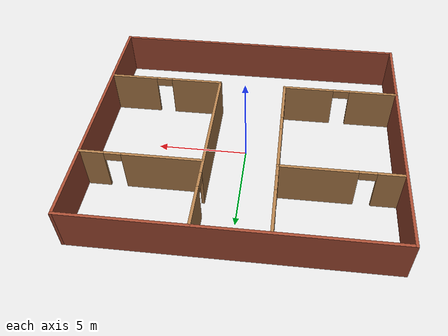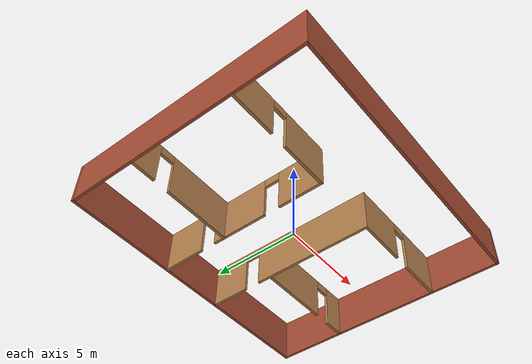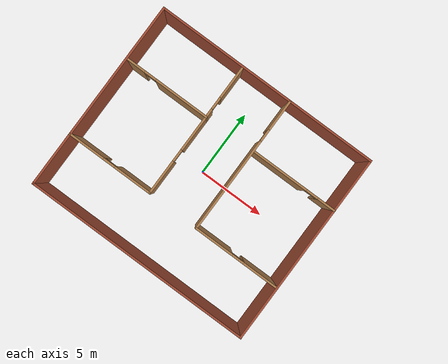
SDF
<?xml version='1.0'?>
<sdf version='1.7'>
  <model name='floor_test'>
    <pose>-0.017473 -0.050716 0 0 -0 0</pose>
    <link name='Wall_0'>
      <collision name='Wall_0_Collision'>
        <geometry>
          <box>
            <size>14.25 0.15 2.5</size>
          </box>
        </geometry>
        <pose>0 0 1.25 0 -0 0</pose>
      </collision>
      <visual name='Wall_0_Visual'>
        <pose>0 0 1.25 0 -0 0</pose>
        <geometry>
          <box>
            <size>14.25 0.15 2.5</size>
          </box>
        </geometry>
        <material>
          <script>
            <uri>file://media/materials/scripts/gazebo.material</uri>
            <name>Gazebo/Bricks</name>
          </script>
          <ambient>1 1 1 1</ambient>
        </material>
        <meta>
          <layer>0</layer>
        </meta>
      </visual>
      <pose>-8.3 -0 0 0 -0 -1.5708</pose>
    </link>
    <link name='Wall_12'>
      <pose>-1.91837 1.96895 0 0 -0 1.5708</pose>
      <visual name='Wall_12_Visual_0'>
        <pose>-3.81265 0 1.25 0 -0 0</pose>
        <geometry>
          <box>
            <size>2.6247 0.15 2.5</size>
          </box>
        </geometry>
        <material>
          <script>
            <uri>file://media/materials/scripts/gazebo.material</uri>
            <name>Gazebo/Wood</name>
          </script>
          <ambient>1 1 1 1</ambient>
        </material>
        <meta>
          <layer>0</layer>
        </meta>
      </visual>
      <collision name='Wall_12_Collision_0'>
        <geometry>
          <box>
            <size>2.6247 0.15 2.5</size>
          </box>
        </geometry>
        <pose>-3.81265 0 1.25 0 -0 0</pose>
      </collision>
      <visual name='Wall_12_Visual_1'>
        <pose>0.045891 0 1.25 0 -0 0</pose>
        <geometry>
          <box>
            <size>3.29239 0.15 2.5</size>
          </box>
        </geometry>
        <material>
          <script>
            <uri>file://media/materials/scripts/gazebo.material</uri>
            <name>Gazebo/Wood</name>
          </script>
          <ambient>1 1 1 1</ambient>
        </material>
        <meta>
          <layer>0</layer>
        </meta>
      </visual>
      <collision name='Wall_12_Collision_1'>
        <geometry>
          <box>
            <size>3.29239 0.15 2.5</size>
          </box>
        </geometry>
        <pose>0.045891 0 1.25 0 -0 0</pose>
      </collision>
      <visual name='Wall_12_Visual_2'>
        <pose>3.85854 0 1.25 0 -0 0</pose>
        <geometry>
          <box>
            <size>2.53291 0.15 2.5</size>
          </box>
        </geometry>
        <material>
          <script>
            <uri>file://media/materials/scripts/gazebo.material</uri>
            <name>Gazebo/Wood</name>
          </script>
          <ambient>1 1 1 1</ambient>
        </material>
        <meta>
          <layer>0</layer>
        </meta>
      </visual>
      <collision name='Wall_12_Collision_2'>
        <geometry>
          <box>
            <size>2.53291 0.15 2.5</size>
          </box>
        </geometry>
        <pose>3.85854 0 1.25 0 -0 0</pose>
      </collision>
      <visual name='Wall_12_Visual_3'>
        <pose>-2.0503 0 2.25 0 -0 0</pose>
        <geometry>
          <box>
            <size>0.9 0.15 0.5</size>
          </box>
        </geometry>
        <material>
          <script>
            <uri>file://media/materials/scripts/gazebo.material</uri>
            <name>Gazebo/Wood</name>
          </script>
          <ambient>1 1 1 1</ambient>
        </material>
        <meta>
          <layer>0</layer>
        </meta>
      </visual>
      <collision name='Wall_12_Collision_3'>
        <geometry>
          <box>
            <size>0.9 0.15 0.5</size>
          </box>
        </geometry>
        <pose>-2.0503 0 2.25 0 -0 0</pose>
      </collision>
      <visual name='Wall_12_Visual_4'>
        <pose>2.14209 0 2.25 0 -0 0</pose>
        <geometry>
          <box>
            <size>0.9 0.15 0.5</size>
          </box>
        </geometry>
        <material>
          <script>
            <uri>file://media/materials/scripts/gazebo.material</uri>
            <name>Gazebo/Wood</name>
          </script>
          <ambient>1 1 1 1</ambient>
        </material>
        <meta>
          <layer>0</layer>
        </meta>
      </visual>
      <collision name='Wall_12_Collision_4'>
        <geometry>
          <box>
            <size>0.9 0.15 0.5</size>
          </box>
        </geometry>
        <pose>2.14209 0 2.25 0 -0 0</pose>
      </collision>
    </link>
    <link name='Wall_19'>
      <pose>1.84747 1.93399 0 0 -0 -1.5708</pose>
      <visual name='Wall_19_Visual_0'>
        <pose>-3.98156 0 1.25 0 -0 0</pose>
        <geometry>
          <box>
            <size>2.28688 0.15 2.5</size>
          </box>
        </geometry>
        <material>
          <script>
            <uri>file://media/materials/scripts/gazebo.material</uri>
            <name>Gazebo/Wood</name>
          </script>
          <ambient>1 1 1 1</ambient>
        </material>
        <meta>
          <layer>0</layer>
        </meta>
      </visual>
      <collision name='Wall_19_Collision_0'>
        <geometry>
          <box>
            <size>2.28688 0.15 2.5</size>
          </box>
        </geometry>
        <pose>-3.98156 0 1.25 0 -0 0</pose>
      </collision>
      <visual name='Wall_19_Visual_1'>
        <pose>1.59344 0 1.25 0 -0 0</pose>
        <geometry>
          <box>
            <size>7.06312 0.15 2.5</size>
          </box>
        </geometry>
        <material>
          <script>
            <uri>file://media/materials/scripts/gazebo.material</uri>
            <name>Gazebo/Wood</name>
          </script>
          <ambient>1 1 1 1</ambient>
        </material>
        <meta>
          <layer>0</layer>
        </meta>
      </visual>
      <collision name='Wall_19_Collision_1'>
        <geometry>
          <box>
            <size>7.06312 0.15 2.5</size>
          </box>
        </geometry>
        <pose>1.59344 0 1.25 0 -0 0</pose>
      </collision>
      <visual name='Wall_19_Visual_2'>
        <pose>-2.38812 0 2.25 0 -0 0</pose>
        <geometry>
          <box>
            <size>0.9 0.15 0.5</size>
          </box>
        </geometry>
        <material>
          <script>
            <uri>file://media/materials/scripts/gazebo.material</uri>
            <name>Gazebo/Wood</name>
          </script>
          <ambient>1 1 1 1</ambient>
        </material>
        <meta>
          <layer>0</layer>
        </meta>
      </visual>
      <collision name='Wall_19_Collision_2'>
        <geometry>
          <box>
            <size>0.9 0.15 0.5</size>
          </box>
        </geometry>
        <pose>-2.38812 0 2.25 0 -0 0</pose>
      </collision>
    </link>
    <link name='Wall_2'>
      <collision name='Wall_2_Collision'>
        <geometry>
          <box>
            <size>16.75 0.15 2.5</size>
          </box>
        </geometry>
        <pose>0 0 1.25 0 -0 0</pose>
      </collision>
      <visual name='Wall_2_Visual'>
        <pose>0 0 1.25 0 -0 0</pose>
        <geometry>
          <box>
            <size>16.75 0.15 2.5</size>
          </box>
        </geometry>
        <material>
          <script>
            <uri>file://media/materials/scripts/gazebo.material</uri>
            <name>Gazebo/Bricks</name>
          </script>
          <ambient>1 1 1 1</ambient>
        </material>
        <meta>
          <layer>0</layer>
        </meta>
      </visual>
      <pose>-0 -7.05 0 0 -0 0</pose>
    </link>
    <link name='Wall_20'>
      <pose>5.02247 -3.11601 0 0 -0 0</pose>
      <visual name='Wall_20_Visual_0'>
        <pose>-1.77687 0 1.25 0 -0 0</pose>
        <geometry>
          <box>
            <size>2.94625 0.15 2.5</size>
          </box>
        </geometry>
        <material>
          <script>
            <uri>file://media/materials/scripts/gazebo.material</uri>
            <name>Gazebo/Wood</name>
          </script>
          <ambient>1 1 1 1</ambient>
        </material>
        <meta>
          <layer>0</layer>
        </meta>
      </visual>
      <collision name='Wall_20_Collision_0'>
        <geometry>
          <box>
            <size>2.94625 0.15 2.5</size>
          </box>
        </geometry>
        <pose>-1.77687 0 1.25 0 -0 0</pose>
      </collision>
      <visual name='Wall_20_Visual_1'>
        <pose>1.92313 0 1.25 0 -0 0</pose>
        <geometry>
          <box>
            <size>2.65375 0.15 2.5</size>
          </box>
        </geometry>
        <material>
          <script>
            <uri>file://media/materials/scripts/gazebo.material</uri>
            <name>Gazebo/Wood</name>
          </script>
          <ambient>1 1 1 1</ambient>
        </material>
        <meta>
          <layer>0</layer>
        </meta>
      </visual>
      <collision name='Wall_20_Collision_1'>
        <geometry>
          <box>
            <size>2.65375 0.15 2.5</size>
          </box>
        </geometry>
        <pose>1.92313 0 1.25 0 -0 0</pose>
      </collision>
      <visual name='Wall_20_Visual_2'>
        <pose>0.146254 0 2.25 0 -0 0</pose>
        <geometry>
          <box>
            <size>0.9 0.15 0.5</size>
          </box>
        </geometry>
        <material>
          <script>
            <uri>file://media/materials/scripts/gazebo.material</uri>
            <name>Gazebo/Wood</name>
          </script>
          <ambient>1 1 1 1</ambient>
        </material>
        <meta>
          <layer>0</layer>
        </meta>
      </visual>
      <collision name='Wall_20_Collision_2'>
        <geometry>
          <box>
            <size>0.9 0.15 0.5</size>
          </box>
        </geometry>
        <pose>0.146254 0 2.25 0 -0 0</pose>
      </collision>
    </link>
    <link name='Wall_22'>
      <pose>5.10227 3.07376 0 0 -0 0</pose>
      <visual name='Wall_22_Visual_0'>
        <pose>-1.13079 0 1.25 0 -0 0</pose>
        <geometry>
          <box>
            <size>4.23843 0.15 2.5</size>
          </box>
        </geometry>
        <material>
          <script>
            <uri>file://media/materials/scripts/gazebo.material</uri>
            <name>Gazebo/Wood</name>
          </script>
          <ambient>1 1 1 1</ambient>
        </material>
        <meta>
          <layer>0</layer>
        </meta>
      </visual>
      <collision name='Wall_22_Collision_0'>
        <geometry>
          <box>
            <size>4.23843 0.15 2.5</size>
          </box>
        </geometry>
        <pose>-1.13079 0 1.25 0 -0 0</pose>
      </collision>
      <visual name='Wall_22_Visual_1'>
        <pose>2.56921 0 1.25 0 -0 0</pose>
        <geometry>
          <box>
            <size>1.36157 0.15 2.5</size>
          </box>
        </geometry>
        <material>
          <script>
            <uri>file://media/materials/scripts/gazebo.material</uri>
            <name>Gazebo/Wood</name>
          </script>
          <ambient>1 1 1 1</ambient>
        </material>
        <meta>
          <layer>0</layer>
        </meta>
      </visual>
      <collision name='Wall_22_Collision_1'>
        <geometry>
          <box>
            <size>1.36157 0.15 2.5</size>
          </box>
        </geometry>
        <pose>2.56921 0 1.25 0 -0 0</pose>
      </collision>
      <visual name='Wall_22_Visual_2'>
        <pose>1.43843 0 2.25 0 -0 0</pose>
        <geometry>
          <box>
            <size>0.9 0.15 0.5</size>
          </box>
        </geometry>
        <material>
          <script>
            <uri>file://media/materials/scripts/gazebo.material</uri>
            <name>Gazebo/Wood</name>
          </script>
          <ambient>1 1 1 1</ambient>
        </material>
        <meta>
          <layer>0</layer>
        </meta>
      </visual>
      <collision name='Wall_22_Collision_2'>
        <geometry>
          <box>
            <size>0.9 0.15 0.5</size>
          </box>
        </geometry>
        <pose>1.43843 0 2.25 0 -0 0</pose>
      </collision>
    </link>
    <link name='Wall_3'>
      <collision name='Wall_3_Collision'>
        <geometry>
          <box>
            <size>14.25 0.15 2.5</size>
          </box>
        </geometry>
        <pose>0 0 1.25 0 -0 0</pose>
      </collision>
      <visual name='Wall_3_Visual'>
        <pose>0 0 1.25 0 -0 0</pose>
        <geometry>
          <box>
            <size>14.25 0.15 2.5</size>
          </box>
        </geometry>
        <material>
          <script>
            <uri>file://media/materials/scripts/gazebo.material</uri>
            <name>Gazebo/Bricks</name>
          </script>
          <ambient>1 1 1 1</ambient>
        </material>
        <meta>
          <layer>0</layer>
        </meta>
      </visual>
      <pose>8.3 -0 0 0 -0 1.5708</pose>
    </link>
    <link name='Wall_4'>
      <collision name='Wall_4_Collision'>
        <geometry>
          <box>
            <size>16.75 0.15 2.5</size>
          </box>
        </geometry>
        <pose>0 0 1.25 0 -0 0</pose>
      </collision>
      <visual name='Wall_4_Visual'>
        <pose>0 0 1.25 0 -0 0</pose>
        <geometry>
          <box>
            <size>16.75 0.15 2.5</size>
          </box>
        </geometry>
        <material>
          <script>
            <uri>file://media/materials/scripts/gazebo.material</uri>
            <name>Gazebo/Bricks</name>
          </script>
          <ambient>1 1 1 1</ambient>
        </material>
        <meta>
          <layer>0</layer>
        </meta>
      </visual>
      <pose>-0 7.05 0 0 -0 3.14159</pose>
    </link>
    <link name='Wall_6'>
      <pose>-5.09337 3.01895 0 0 -0 0</pose>
      <visual name='Wall_6_Visual_0'>
        <pose>-2.50031 0 1.25 0 -0 0</pose>
        <geometry>
          <box>
            <size>1.49937 0.15 2.5</size>
          </box>
        </geometry>
        <material>
          <script>
            <uri>file://media/materials/scripts/gazebo.material</uri>
            <name>Gazebo/Wood</name>
          </script>
          <ambient>1 1 1 1</ambient>
        </material>
        <meta>
          <layer>0</layer>
        </meta>
      </visual>
      <collision name='Wall_6_Collision_0'>
        <geometry>
          <box>
            <size>1.49937 0.15 2.5</size>
          </box>
        </geometry>
        <pose>-2.50031 0 1.25 0 -0 0</pose>
      </collision>
      <visual name='Wall_6_Visual_1'>
        <pose>1.19969 0 1.25 0 -0 0</pose>
        <geometry>
          <box>
            <size>4.10063 0.15 2.5</size>
          </box>
        </geometry>
        <material>
          <script>
            <uri>file://media/materials/scripts/gazebo.material</uri>
            <name>Gazebo/Wood</name>
          </script>
          <ambient>1 1 1 1</ambient>
        </material>
        <meta>
          <layer>0</layer>
        </meta>
      </visual>
      <collision name='Wall_6_Collision_1'>
        <geometry>
          <box>
            <size>4.10063 0.15 2.5</size>
          </box>
        </geometry>
        <pose>1.19969 0 1.25 0 -0 0</pose>
      </collision>
      <visual name='Wall_6_Visual_2'>
        <pose>-1.30063 0 2.25 0 -0 0</pose>
        <geometry>
          <box>
            <size>0.9 0.15 0.5</size>
          </box>
        </geometry>
        <material>
          <script>
            <uri>file://media/materials/scripts/gazebo.material</uri>
            <name>Gazebo/Wood</name>
          </script>
          <ambient>1 1 1 1</ambient>
        </material>
        <meta>
          <layer>0</layer>
        </meta>
      </visual>
      <collision name='Wall_6_Collision_2'>
        <geometry>
          <box>
            <size>0.9 0.15 0.5</size>
          </box>
        </geometry>
        <pose>-1.30063 0 2.25 0 -0 0</pose>
      </collision>
    </link>
    <link name='Wall_9'>
      <pose>-5.09337 -3.08105 0 0 -0 3.14159</pose>
      <visual name='Wall_9_Visual_0'>
        <pose>-1.80977 0 1.25 0 -0 0</pose>
        <geometry>
          <box>
            <size>2.88047 0.15 2.5</size>
          </box>
        </geometry>
        <material>
          <script>
            <uri>file://media/materials/scripts/gazebo.material</uri>
            <name>Gazebo/Wood</name>
          </script>
          <ambient>1 1 1 1</ambient>
        </material>
        <meta>
          <layer>0</layer>
        </meta>
      </visual>
      <collision name='Wall_9_Collision_0'>
        <geometry>
          <box>
            <size>2.88047 0.15 2.5</size>
          </box>
        </geometry>
        <pose>-1.80977 0 1.25 0 -0 0</pose>
      </collision>
      <visual name='Wall_9_Visual_1'>
        <pose>1.89024 0 1.25 0 -0 0</pose>
        <geometry>
          <box>
            <size>2.71953 0.15 2.5</size>
          </box>
        </geometry>
        <material>
          <script>
            <uri>file://media/materials/scripts/gazebo.material</uri>
            <name>Gazebo/Wood</name>
          </script>
          <ambient>1 1 1 1</ambient>
        </material>
        <meta>
          <layer>0</layer>
        </meta>
      </visual>
      <collision name='Wall_9_Collision_1'>
        <geometry>
          <box>
            <size>2.71953 0.15 2.5</size>
          </box>
        </geometry>
        <pose>1.89024 0 1.25 0 -0 0</pose>
      </collision>
      <visual name='Wall_9_Visual_2'>
        <pose>0.08047 0 2.25 0 -0 0</pose>
        <geometry>
          <box>
            <size>0.9 0.15 0.5</size>
          </box>
        </geometry>
        <material>
          <script>
            <uri>file://media/materials/scripts/gazebo.material</uri>
            <name>Gazebo/Wood</name>
          </script>
          <ambient>1 1 1 1</ambient>
        </material>
        <meta>
          <layer>0</layer>
        </meta>
      </visual>
      <collision name='Wall_9_Collision_2'>
        <geometry>
          <box>
            <size>0.9 0.15 0.5</size>
          </box>
        </geometry>
        <pose>0.08047 0 2.25 0 -0 0</pose>
      </collision>
    </link>
    <static>1</static>
  </model>
</sdf>
